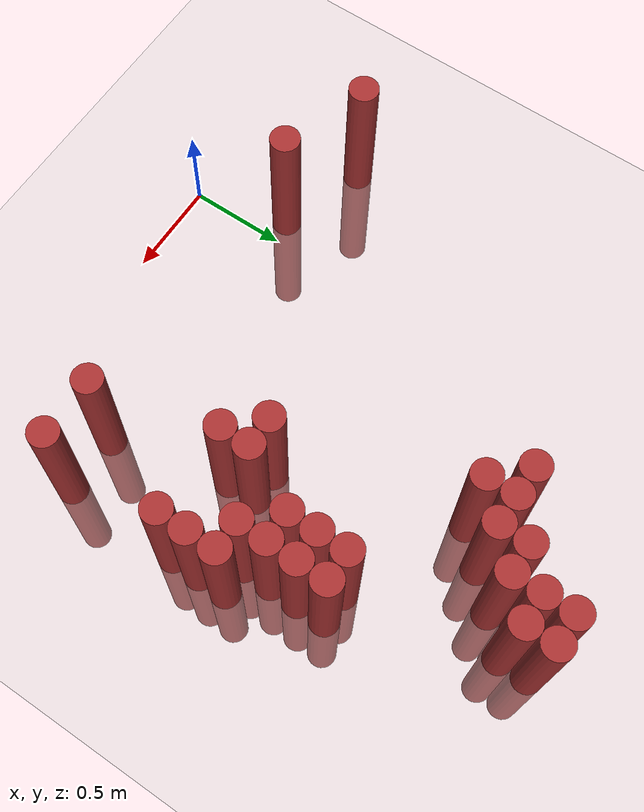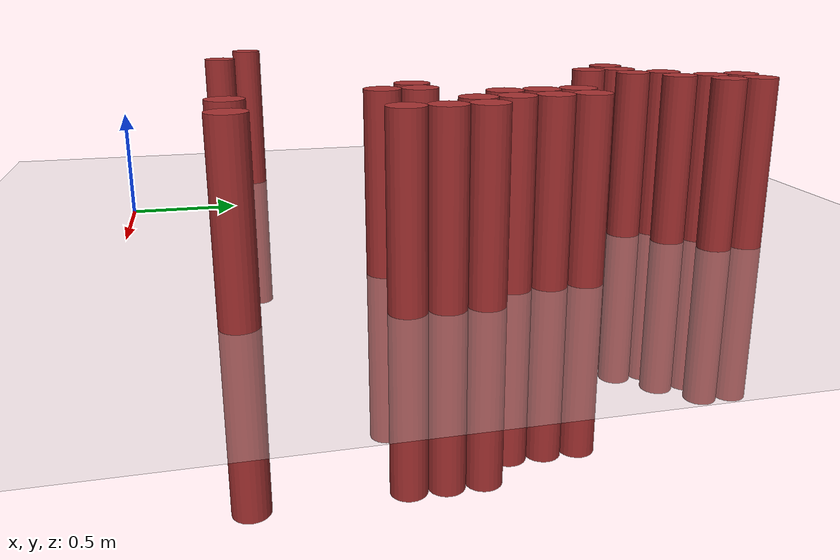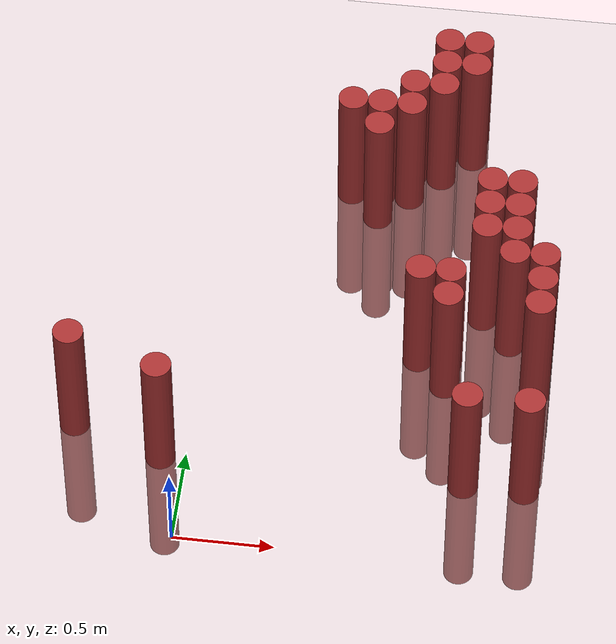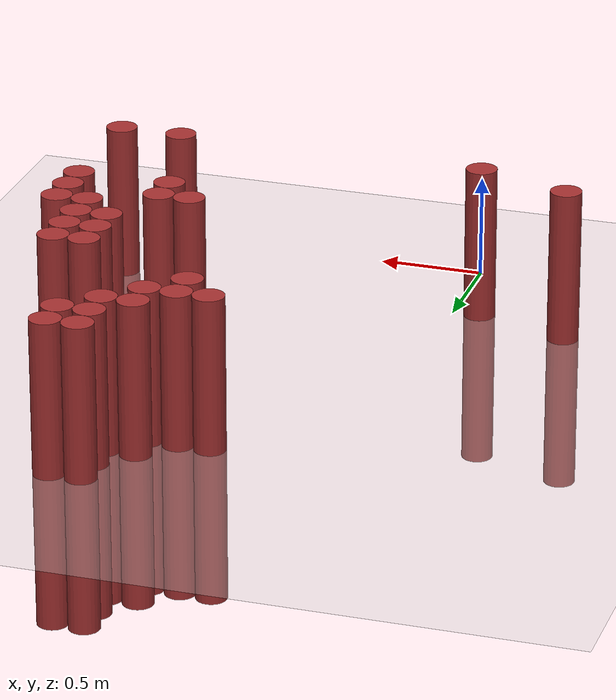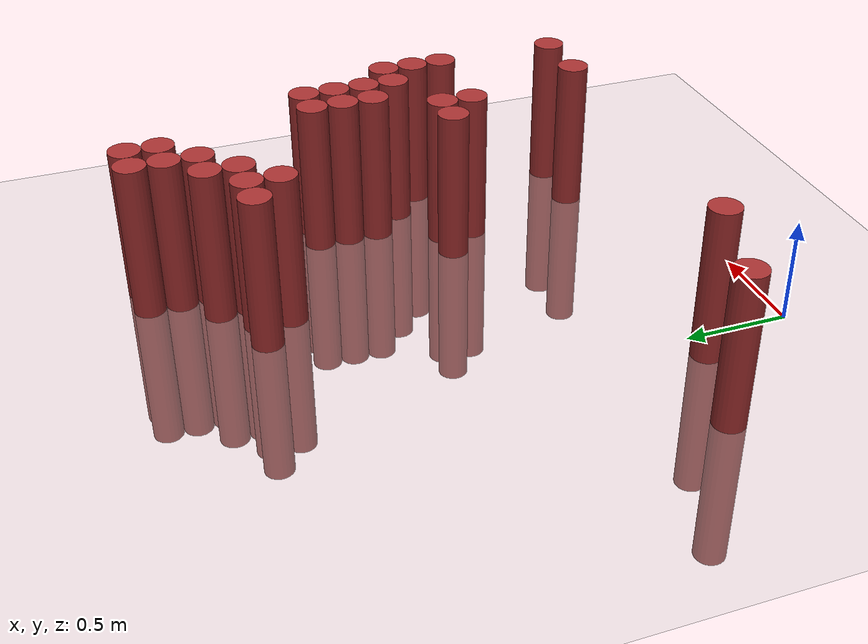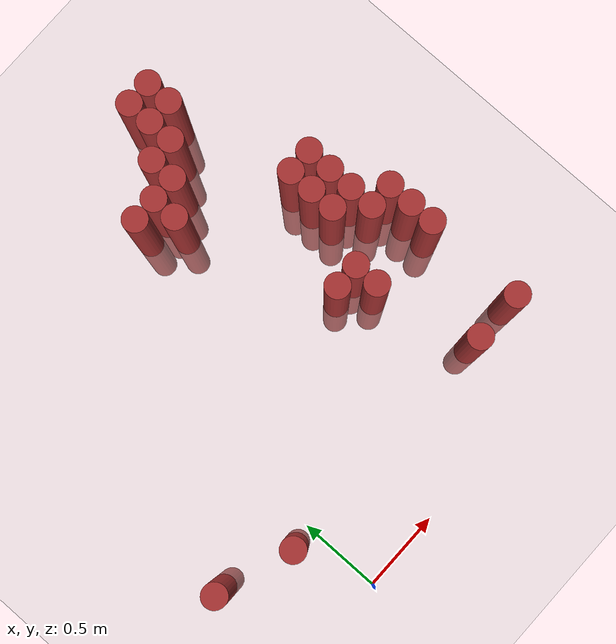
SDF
<sdf version="1.6">
 <world name="default">
  <model name="ground_plane">
   <static>1</static>
   <link name="link">
    <collision name="collision">
     <geometry><plane><normal>0 0 1</normal><size>100 100</size></plane></geometry>
     <surface><friction><ode><mu>100</mu><mu2>50</mu2></ode></friction></surface>
    </collision>
    <visual name="visual">
     <cast_shadows>0</cast_shadows>
     <geometry><plane><normal>0 0 1</normal><size>100 100</size></plane></geometry>
     <material>
      <script><uri>file://media/materials/scripts/gazebo.material</uri><name>Gazebo/Grey</name></script>
     </material>
    </visual>
   </link>
  </model>
  <model name="unit_cylinder_164">
   <static>1</static>
   <pose>-0.575000 0.625000 0.000000 0.000000 0.000000 0.000000</pose>
   <link name="link">
    <inertial>
     <mass>1</mass>
     <inertia><ixx>0.145833</ixx><ixy>0</ixy><ixz>0</ixz><iyy>0.145833</iyy><iyz>0</iyz><izz>0.125</izz></inertia>
    </inertial>
    <collision name="collision">
     <geometry><cylinder><radius>0.075000</radius><length>1.5</length></cylinder></geometry>
    </collision>
    <visual name="visual">
     <geometry><cylinder><radius>0.075000</radius><length>1.5</length></cylinder></geometry>
     <material>
      <ambient>0.648000 0.192000 0.192000 1</ambient>
      <diffuse>0.648000 0.192000 0.192000 1</diffuse>
     </material>
     <material>
      <script><name>Gazebo/Grey</name><uri>file://media/materials/scripts/gazebo.material</uri></script>
     </material>
    </visual>
   </link>
  </model>
  <model name="unit_cylinder_169">
   <static>1</static>
   <pose>-0.125000 0.475000 0.000000 0.000000 0.000000 0.000000</pose>
   <link name="link">
    <inertial>
     <mass>1</mass>
     <inertia><ixx>0.145833</ixx><ixy>0</ixy><ixz>0</ixz><iyy>0.145833</iyy><iyz>0</iyz><izz>0.125</izz></inertia>
    </inertial>
    <collision name="collision">
     <geometry><cylinder><radius>0.075000</radius><length>1.5</length></cylinder></geometry>
    </collision>
    <visual name="visual">
     <geometry><cylinder><radius>0.075000</radius><length>1.5</length></cylinder></geometry>
     <material>
      <ambient>0.648000 0.192000 0.192000 1</ambient>
      <diffuse>0.648000 0.192000 0.192000 1</diffuse>
     </material>
     <material>
      <script><name>Gazebo/Grey</name><uri>file://media/materials/scripts/gazebo.material</uri></script>
     </material>
    </visual>
   </link>
  </model>
  <model name="unit_cylinder_170">
   <static>1</static>
   <pose>0.625000 2.275000 0.000000 0.000000 0.000000 0.000000</pose>
   <link name="link">
    <inertial>
     <mass>1</mass>
     <inertia><ixx>0.145833</ixx><ixy>0</ixy><ixz>0</ixz><iyy>0.145833</iyy><iyz>0</iyz><izz>0.125</izz></inertia>
    </inertial>
    <collision name="collision">
     <geometry><cylinder><radius>0.075000</radius><length>1.5</length></cylinder></geometry>
    </collision>
    <visual name="visual">
     <geometry><cylinder><radius>0.075000</radius><length>1.5</length></cylinder></geometry>
     <material>
      <ambient>0.648000 0.192000 0.192000 1</ambient>
      <diffuse>0.648000 0.192000 0.192000 1</diffuse>
     </material>
     <material>
      <script><name>Gazebo/Grey</name><uri>file://media/materials/scripts/gazebo.material</uri></script>
     </material>
    </visual>
   </link>
  </model>
  <model name="unit_cylinder_172">
   <static>1</static>
   <pose>0.775000 2.125000 0.000000 0.000000 0.000000 0.000000</pose>
   <link name="link">
    <inertial>
     <mass>1</mass>
     <inertia><ixx>0.145833</ixx><ixy>0</ixy><ixz>0</ixz><iyy>0.145833</iyy><iyz>0</iyz><izz>0.125</izz></inertia>
    </inertial>
    <collision name="collision">
     <geometry><cylinder><radius>0.075000</radius><length>1.5</length></cylinder></geometry>
    </collision>
    <visual name="visual">
     <geometry><cylinder><radius>0.075000</radius><length>1.5</length></cylinder></geometry>
     <material>
      <ambient>0.648000 0.192000 0.192000 1</ambient>
      <diffuse>0.648000 0.192000 0.192000 1</diffuse>
     </material>
     <material>
      <script><name>Gazebo/Grey</name><uri>file://media/materials/scripts/gazebo.material</uri></script>
     </material>
    </visual>
   </link>
  </model>
  <model name="unit_cylinder_173">
   <static>1</static>
   <pose>0.775000 2.275000 0.000000 0.000000 0.000000 0.000000</pose>
   <link name="link">
    <inertial>
     <mass>1</mass>
     <inertia><ixx>0.145833</ixx><ixy>0</ixy><ixz>0</ixz><iyy>0.145833</iyy><iyz>0</iyz><izz>0.125</izz></inertia>
    </inertial>
    <collision name="collision">
     <geometry><cylinder><radius>0.075000</radius><length>1.5</length></cylinder></geometry>
    </collision>
    <visual name="visual">
     <geometry><cylinder><radius>0.075000</radius><length>1.5</length></cylinder></geometry>
     <material>
      <ambient>0.648000 0.192000 0.192000 1</ambient>
      <diffuse>0.648000 0.192000 0.192000 1</diffuse>
     </material>
     <material>
      <script><name>Gazebo/Grey</name><uri>file://media/materials/scripts/gazebo.material</uri></script>
     </material>
    </visual>
   </link>
  </model>
  <model name="unit_cylinder_177">
   <static>1</static>
   <pose>0.925000 2.275000 0.000000 0.000000 0.000000 0.000000</pose>
   <link name="link">
    <inertial>
     <mass>1</mass>
     <inertia><ixx>0.145833</ixx><ixy>0</ixy><ixz>0</ixz><iyy>0.145833</iyy><iyz>0</iyz><izz>0.125</izz></inertia>
    </inertial>
    <collision name="collision">
     <geometry><cylinder><radius>0.075000</radius><length>1.5</length></cylinder></geometry>
    </collision>
    <visual name="visual">
     <geometry><cylinder><radius>0.075000</radius><length>1.5</length></cylinder></geometry>
     <material>
      <ambient>0.648000 0.192000 0.192000 1</ambient>
      <diffuse>0.648000 0.192000 0.192000 1</diffuse>
     </material>
     <material>
      <script><name>Gazebo/Grey</name><uri>file://media/materials/scripts/gazebo.material</uri></script>
     </material>
    </visual>
   </link>
  </model>
  <model name="unit_cylinder_178">
   <static>1</static>
   <pose>0.925000 2.425000 0.000000 0.000000 0.000000 0.000000</pose>
   <link name="link">
    <inertial>
     <mass>1</mass>
     <inertia><ixx>0.145833</ixx><ixy>0</ixy><ixz>0</ixz><iyy>0.145833</iyy><iyz>0</iyz><izz>0.125</izz></inertia>
    </inertial>
    <collision name="collision">
     <geometry><cylinder><radius>0.075000</radius><length>1.5</length></cylinder></geometry>
    </collision>
    <visual name="visual">
     <geometry><cylinder><radius>0.075000</radius><length>1.5</length></cylinder></geometry>
     <material>
      <ambient>0.648000 0.192000 0.192000 1</ambient>
      <diffuse>0.648000 0.192000 0.192000 1</diffuse>
     </material>
     <material>
      <script><name>Gazebo/Grey</name><uri>file://media/materials/scripts/gazebo.material</uri></script>
     </material>
    </visual>
   </link>
  </model>
  <model name="unit_cylinder_186">
   <static>1</static>
   <pose>1.075000 1.225000 0.000000 0.000000 0.000000 0.000000</pose>
   <link name="link">
    <inertial>
     <mass>1</mass>
     <inertia><ixx>0.145833</ixx><ixy>0</ixy><ixz>0</ixz><iyy>0.145833</iyy><iyz>0</iyz><izz>0.125</izz></inertia>
    </inertial>
    <collision name="collision">
     <geometry><cylinder><radius>0.075000</radius><length>1.5</length></cylinder></geometry>
    </collision>
    <visual name="visual">
     <geometry><cylinder><radius>0.075000</radius><length>1.5</length></cylinder></geometry>
     <material>
      <ambient>0.648000 0.192000 0.192000 1</ambient>
      <diffuse>0.648000 0.192000 0.192000 1</diffuse>
     </material>
     <material>
      <script><name>Gazebo/Grey</name><uri>file://media/materials/scripts/gazebo.material</uri></script>
     </material>
    </visual>
   </link>
  </model>
  <model name="unit_cylinder_187">
   <static>1</static>
   <pose>1.075000 2.425000 0.000000 0.000000 0.000000 0.000000</pose>
   <link name="link">
    <inertial>
     <mass>1</mass>
     <inertia><ixx>0.145833</ixx><ixy>0</ixy><ixz>0</ixz><iyy>0.145833</iyy><iyz>0</iyz><izz>0.125</izz></inertia>
    </inertial>
    <collision name="collision">
     <geometry><cylinder><radius>0.075000</radius><length>1.5</length></cylinder></geometry>
    </collision>
    <visual name="visual">
     <geometry><cylinder><radius>0.075000</radius><length>1.5</length></cylinder></geometry>
     <material>
      <ambient>0.648000 0.192000 0.192000 1</ambient>
      <diffuse>0.648000 0.192000 0.192000 1</diffuse>
     </material>
     <material>
      <script><name>Gazebo/Grey</name><uri>file://media/materials/scripts/gazebo.material</uri></script>
     </material>
    </visual>
   </link>
  </model>
  <model name="unit_cylinder_188">
   <static>1</static>
   <pose>1.075000 2.575000 0.000000 0.000000 0.000000 0.000000</pose>
   <link name="link">
    <inertial>
     <mass>1</mass>
     <inertia><ixx>0.145833</ixx><ixy>0</ixy><ixz>0</ixz><iyy>0.145833</iyy><iyz>0</iyz><izz>0.125</izz></inertia>
    </inertial>
    <collision name="collision">
     <geometry><cylinder><radius>0.075000</radius><length>1.5</length></cylinder></geometry>
    </collision>
    <visual name="visual">
     <geometry><cylinder><radius>0.075000</radius><length>1.5</length></cylinder></geometry>
     <material>
      <ambient>0.648000 0.192000 0.192000 1</ambient>
      <diffuse>0.648000 0.192000 0.192000 1</diffuse>
     </material>
     <material>
      <script><name>Gazebo/Grey</name><uri>file://media/materials/scripts/gazebo.material</uri></script>
     </material>
    </visual>
   </link>
  </model>
  <model name="unit_cylinder_189">
   <static>1</static>
   <pose>1.075000 2.725000 0.000000 0.000000 0.000000 0.000000</pose>
   <link name="link">
    <inertial>
     <mass>1</mass>
     <inertia><ixx>0.145833</ixx><ixy>0</ixy><ixz>0</ixz><iyy>0.145833</iyy><iyz>0</iyz><izz>0.125</izz></inertia>
    </inertial>
    <collision name="collision">
     <geometry><cylinder><radius>0.075000</radius><length>1.5</length></cylinder></geometry>
    </collision>
    <visual name="visual">
     <geometry><cylinder><radius>0.075000</radius><length>1.5</length></cylinder></geometry>
     <material>
      <ambient>0.648000 0.192000 0.192000 1</ambient>
      <diffuse>0.648000 0.192000 0.192000 1</diffuse>
     </material>
     <material>
      <script><name>Gazebo/Grey</name><uri>file://media/materials/scripts/gazebo.material</uri></script>
     </material>
    </visual>
   </link>
  </model>
  <model name="unit_cylinder_195">
   <static>1</static>
   <pose>1.225000 1.075000 0.000000 0.000000 0.000000 0.000000</pose>
   <link name="link">
    <inertial>
     <mass>1</mass>
     <inertia><ixx>0.145833</ixx><ixy>0</ixy><ixz>0</ixz><iyy>0.145833</iyy><iyz>0</iyz><izz>0.125</izz></inertia>
    </inertial>
    <collision name="collision">
     <geometry><cylinder><radius>0.075000</radius><length>1.5</length></cylinder></geometry>
    </collision>
    <visual name="visual">
     <geometry><cylinder><radius>0.075000</radius><length>1.5</length></cylinder></geometry>
     <material>
      <ambient>0.648000 0.192000 0.192000 1</ambient>
      <diffuse>0.648000 0.192000 0.192000 1</diffuse>
     </material>
     <material>
      <script><name>Gazebo/Grey</name><uri>file://media/materials/scripts/gazebo.material</uri></script>
     </material>
    </visual>
   </link>
  </model>
  <model name="unit_cylinder_196">
   <static>1</static>
   <pose>1.225000 1.225000 0.000000 0.000000 0.000000 0.000000</pose>
   <link name="link">
    <inertial>
     <mass>1</mass>
     <inertia><ixx>0.145833</ixx><ixy>0</ixy><ixz>0</ixz><iyy>0.145833</iyy><iyz>0</iyz><izz>0.125</izz></inertia>
    </inertial>
    <collision name="collision">
     <geometry><cylinder><radius>0.075000</radius><length>1.5</length></cylinder></geometry>
    </collision>
    <visual name="visual">
     <geometry><cylinder><radius>0.075000</radius><length>1.5</length></cylinder></geometry>
     <material>
      <ambient>0.648000 0.192000 0.192000 1</ambient>
      <diffuse>0.648000 0.192000 0.192000 1</diffuse>
     </material>
     <material>
      <script><name>Gazebo/Grey</name><uri>file://media/materials/scripts/gazebo.material</uri></script>
     </material>
    </visual>
   </link>
  </model>
  <model name="unit_cylinder_197">
   <static>1</static>
   <pose>1.225000 2.575000 0.000000 0.000000 0.000000 0.000000</pose>
   <link name="link">
    <inertial>
     <mass>1</mass>
     <inertia><ixx>0.145833</ixx><ixy>0</ixy><ixz>0</ixz><iyy>0.145833</iyy><iyz>0</iyz><izz>0.125</izz></inertia>
    </inertial>
    <collision name="collision">
     <geometry><cylinder><radius>0.075000</radius><length>1.5</length></cylinder></geometry>
    </collision>
    <visual name="visual">
     <geometry><cylinder><radius>0.075000</radius><length>1.5</length></cylinder></geometry>
     <material>
      <ambient>0.648000 0.192000 0.192000 1</ambient>
      <diffuse>0.648000 0.192000 0.192000 1</diffuse>
     </material>
     <material>
      <script><name>Gazebo/Grey</name><uri>file://media/materials/scripts/gazebo.material</uri></script>
     </material>
    </visual>
   </link>
  </model>
  <model name="unit_cylinder_198">
   <static>1</static>
   <pose>1.225000 2.725000 0.000000 0.000000 0.000000 0.000000</pose>
   <link name="link">
    <inertial>
     <mass>1</mass>
     <inertia><ixx>0.145833</ixx><ixy>0</ixy><ixz>0</ixz><iyy>0.145833</iyy><iyz>0</iyz><izz>0.125</izz></inertia>
    </inertial>
    <collision name="collision">
     <geometry><cylinder><radius>0.075000</radius><length>1.5</length></cylinder></geometry>
    </collision>
    <visual name="visual">
     <geometry><cylinder><radius>0.075000</radius><length>1.5</length></cylinder></geometry>
     <material>
      <ambient>0.648000 0.192000 0.192000 1</ambient>
      <diffuse>0.648000 0.192000 0.192000 1</diffuse>
     </material>
     <material>
      <script><name>Gazebo/Grey</name><uri>file://media/materials/scripts/gazebo.material</uri></script>
     </material>
    </visual>
   </link>
  </model>
  <model name="unit_cylinder_201">
   <static>1</static>
   <pose>1.375000 0.475000 0.000000 0.000000 0.000000 0.000000</pose>
   <link name="link">
    <inertial>
     <mass>1</mass>
     <inertia><ixx>0.145833</ixx><ixy>0</ixy><ixz>0</ixz><iyy>0.145833</iyy><iyz>0</iyz><izz>0.125</izz></inertia>
    </inertial>
    <collision name="collision">
     <geometry><cylinder><radius>0.075000</radius><length>1.5</length></cylinder></geometry>
    </collision>
    <visual name="visual">
     <geometry><cylinder><radius>0.075000</radius><length>1.5</length></cylinder></geometry>
     <material>
      <ambient>0.648000 0.192000 0.192000 1</ambient>
      <diffuse>0.648000 0.192000 0.192000 1</diffuse>
     </material>
     <material>
      <script><name>Gazebo/Grey</name><uri>file://media/materials/scripts/gazebo.material</uri></script>
     </material>
    </visual>
   </link>
  </model>
  <model name="unit_cylinder_202">
   <static>1</static>
   <pose>1.375000 1.525000 0.000000 0.000000 0.000000 0.000000</pose>
   <link name="link">
    <inertial>
     <mass>1</mass>
     <inertia><ixx>0.145833</ixx><ixy>0</ixy><ixz>0</ixz><iyy>0.145833</iyy><iyz>0</iyz><izz>0.125</izz></inertia>
    </inertial>
    <collision name="collision">
     <geometry><cylinder><radius>0.075000</radius><length>1.5</length></cylinder></geometry>
    </collision>
    <visual name="visual">
     <geometry><cylinder><radius>0.075000</radius><length>1.5</length></cylinder></geometry>
     <material>
      <ambient>0.648000 0.192000 0.192000 1</ambient>
      <diffuse>0.648000 0.192000 0.192000 1</diffuse>
     </material>
     <material>
      <script><name>Gazebo/Grey</name><uri>file://media/materials/scripts/gazebo.material</uri></script>
     </material>
    </visual>
   </link>
  </model>
  <model name="unit_cylinder_203">
   <static>1</static>
   <pose>1.375000 1.675000 0.000000 0.000000 0.000000 0.000000</pose>
   <link name="link">
    <inertial>
     <mass>1</mass>
     <inertia><ixx>0.145833</ixx><ixy>0</ixy><ixz>0</ixz><iyy>0.145833</iyy><iyz>0</iyz><izz>0.125</izz></inertia>
    </inertial>
    <collision name="collision">
     <geometry><cylinder><radius>0.075000</radius><length>1.5</length></cylinder></geometry>
    </collision>
    <visual name="visual">
     <geometry><cylinder><radius>0.075000</radius><length>1.5</length></cylinder></geometry>
     <material>
      <ambient>0.648000 0.192000 0.192000 1</ambient>
      <diffuse>0.648000 0.192000 0.192000 1</diffuse>
     </material>
     <material>
      <script><name>Gazebo/Grey</name><uri>file://media/materials/scripts/gazebo.material</uri></script>
     </material>
    </visual>
   </link>
  </model>
  <model name="unit_cylinder_204">
   <static>1</static>
   <pose>1.375000 1.825000 0.000000 0.000000 0.000000 0.000000</pose>
   <link name="link">
    <inertial>
     <mass>1</mass>
     <inertia><ixx>0.145833</ixx><ixy>0</ixy><ixz>0</ixz><iyy>0.145833</iyy><iyz>0</iyz><izz>0.125</izz></inertia>
    </inertial>
    <collision name="collision">
     <geometry><cylinder><radius>0.075000</radius><length>1.5</length></cylinder></geometry>
    </collision>
    <visual name="visual">
     <geometry><cylinder><radius>0.075000</radius><length>1.5</length></cylinder></geometry>
     <material>
      <ambient>0.648000 0.192000 0.192000 1</ambient>
      <diffuse>0.648000 0.192000 0.192000 1</diffuse>
     </material>
     <material>
      <script><name>Gazebo/Grey</name><uri>file://media/materials/scripts/gazebo.material</uri></script>
     </material>
    </visual>
   </link>
  </model>
  <model name="unit_cylinder_207">
   <static>1</static>
   <pose>1.525000 1.375000 0.000000 0.000000 0.000000 0.000000</pose>
   <link name="link">
    <inertial>
     <mass>1</mass>
     <inertia><ixx>0.145833</ixx><ixy>0</ixy><ixz>0</ixz><iyy>0.145833</iyy><iyz>0</iyz><izz>0.125</izz></inertia>
    </inertial>
    <collision name="collision">
     <geometry><cylinder><radius>0.075000</radius><length>1.5</length></cylinder></geometry>
    </collision>
    <visual name="visual">
     <geometry><cylinder><radius>0.075000</radius><length>1.5</length></cylinder></geometry>
     <material>
      <ambient>0.648000 0.192000 0.192000 1</ambient>
      <diffuse>0.648000 0.192000 0.192000 1</diffuse>
     </material>
     <material>
      <script><name>Gazebo/Grey</name><uri>file://media/materials/scripts/gazebo.material</uri></script>
     </material>
    </visual>
   </link>
  </model>
  <model name="unit_cylinder_208">
   <static>1</static>
   <pose>1.525000 1.525000 0.000000 0.000000 0.000000 0.000000</pose>
   <link name="link">
    <inertial>
     <mass>1</mass>
     <inertia><ixx>0.145833</ixx><ixy>0</ixy><ixz>0</ixz><iyy>0.145833</iyy><iyz>0</iyz><izz>0.125</izz></inertia>
    </inertial>
    <collision name="collision">
     <geometry><cylinder><radius>0.075000</radius><length>1.5</length></cylinder></geometry>
    </collision>
    <visual name="visual">
     <geometry><cylinder><radius>0.075000</radius><length>1.5</length></cylinder></geometry>
     <material>
      <ambient>0.648000 0.192000 0.192000 1</ambient>
      <diffuse>0.648000 0.192000 0.192000 1</diffuse>
     </material>
     <material>
      <script><name>Gazebo/Grey</name><uri>file://media/materials/scripts/gazebo.material</uri></script>
     </material>
    </visual>
   </link>
  </model>
  <model name="unit_cylinder_209">
   <static>1</static>
   <pose>1.525000 1.675000 0.000000 0.000000 0.000000 0.000000</pose>
   <link name="link">
    <inertial>
     <mass>1</mass>
     <inertia><ixx>0.145833</ixx><ixy>0</ixy><ixz>0</ixz><iyy>0.145833</iyy><iyz>0</iyz><izz>0.125</izz></inertia>
    </inertial>
    <collision name="collision">
     <geometry><cylinder><radius>0.075000</radius><length>1.5</length></cylinder></geometry>
    </collision>
    <visual name="visual">
     <geometry><cylinder><radius>0.075000</radius><length>1.5</length></cylinder></geometry>
     <material>
      <ambient>0.648000 0.192000 0.192000 1</ambient>
      <diffuse>0.648000 0.192000 0.192000 1</diffuse>
     </material>
     <material>
      <script><name>Gazebo/Grey</name><uri>file://media/materials/scripts/gazebo.material</uri></script>
     </material>
    </visual>
   </link>
  </model>
  <model name="unit_cylinder_210">
   <static>1</static>
   <pose>1.525000 1.825000 0.000000 0.000000 0.000000 0.000000</pose>
   <link name="link">
    <inertial>
     <mass>1</mass>
     <inertia><ixx>0.145833</ixx><ixy>0</ixy><ixz>0</ixz><iyy>0.145833</iyy><iyz>0</iyz><izz>0.125</izz></inertia>
    </inertial>
    <collision name="collision">
     <geometry><cylinder><radius>0.075000</radius><length>1.5</length></cylinder></geometry>
    </collision>
    <visual name="visual">
     <geometry><cylinder><radius>0.075000</radius><length>1.5</length></cylinder></geometry>
     <material>
      <ambient>0.648000 0.192000 0.192000 1</ambient>
      <diffuse>0.648000 0.192000 0.192000 1</diffuse>
     </material>
     <material>
      <script><name>Gazebo/Grey</name><uri>file://media/materials/scripts/gazebo.material</uri></script>
     </material>
    </visual>
   </link>
  </model>
  <model name="unit_cylinder_213">
   <static>1</static>
   <pose>1.675000 0.475000 0.000000 0.000000 0.000000 0.000000</pose>
   <link name="link">
    <inertial>
     <mass>1</mass>
     <inertia><ixx>0.145833</ixx><ixy>0</ixy><ixz>0</ixz><iyy>0.145833</iyy><iyz>0</iyz><izz>0.125</izz></inertia>
    </inertial>
    <collision name="collision">
     <geometry><cylinder><radius>0.075000</radius><length>1.5</length></cylinder></geometry>
    </collision>
    <visual name="visual">
     <geometry><cylinder><radius>0.075000</radius><length>1.5</length></cylinder></geometry>
     <material>
      <ambient>0.648000 0.192000 0.192000 1</ambient>
      <diffuse>0.648000 0.192000 0.192000 1</diffuse>
     </material>
     <material>
      <script><name>Gazebo/Grey</name><uri>file://media/materials/scripts/gazebo.material</uri></script>
     </material>
    </visual>
   </link>
  </model>
  <model name="unit_cylinder_214">
   <static>1</static>
   <pose>1.675000 1.075000 0.000000 0.000000 0.000000 0.000000</pose>
   <link name="link">
    <inertial>
     <mass>1</mass>
     <inertia><ixx>0.145833</ixx><ixy>0</ixy><ixz>0</ixz><iyy>0.145833</iyy><iyz>0</iyz><izz>0.125</izz></inertia>
    </inertial>
    <collision name="collision">
     <geometry><cylinder><radius>0.075000</radius><length>1.5</length></cylinder></geometry>
    </collision>
    <visual name="visual">
     <geometry><cylinder><radius>0.075000</radius><length>1.5</length></cylinder></geometry>
     <material>
      <ambient>0.648000 0.192000 0.192000 1</ambient>
      <diffuse>0.648000 0.192000 0.192000 1</diffuse>
     </material>
     <material>
      <script><name>Gazebo/Grey</name><uri>file://media/materials/scripts/gazebo.material</uri></script>
     </material>
    </visual>
   </link>
  </model>
  <model name="unit_cylinder_215">
   <static>1</static>
   <pose>1.675000 1.225000 0.000000 0.000000 0.000000 0.000000</pose>
   <link name="link">
    <inertial>
     <mass>1</mass>
     <inertia><ixx>0.145833</ixx><ixy>0</ixy><ixz>0</ixz><iyy>0.145833</iyy><iyz>0</iyz><izz>0.125</izz></inertia>
    </inertial>
    <collision name="collision">
     <geometry><cylinder><radius>0.075000</radius><length>1.5</length></cylinder></geometry>
    </collision>
    <visual name="visual">
     <geometry><cylinder><radius>0.075000</radius><length>1.5</length></cylinder></geometry>
     <material>
      <ambient>0.648000 0.192000 0.192000 1</ambient>
      <diffuse>0.648000 0.192000 0.192000 1</diffuse>
     </material>
     <material>
      <script><name>Gazebo/Grey</name><uri>file://media/materials/scripts/gazebo.material</uri></script>
     </material>
    </visual>
   </link>
  </model>
  <model name="unit_cylinder_216">
   <static>1</static>
   <pose>1.675000 1.375000 0.000000 0.000000 0.000000 0.000000</pose>
   <link name="link">
    <inertial>
     <mass>1</mass>
     <inertia><ixx>0.145833</ixx><ixy>0</ixy><ixz>0</ixz><iyy>0.145833</iyy><iyz>0</iyz><izz>0.125</izz></inertia>
    </inertial>
    <collision name="collision">
     <geometry><cylinder><radius>0.075000</radius><length>1.5</length></cylinder></geometry>
    </collision>
    <visual name="visual">
     <geometry><cylinder><radius>0.075000</radius><length>1.5</length></cylinder></geometry>
     <material>
      <ambient>0.648000 0.192000 0.192000 1</ambient>
      <diffuse>0.648000 0.192000 0.192000 1</diffuse>
     </material>
     <material>
      <script><name>Gazebo/Grey</name><uri>file://media/materials/scripts/gazebo.material</uri></script>
     </material>
    </visual>
   </link>
  </model>
 </world>
</sdf>
